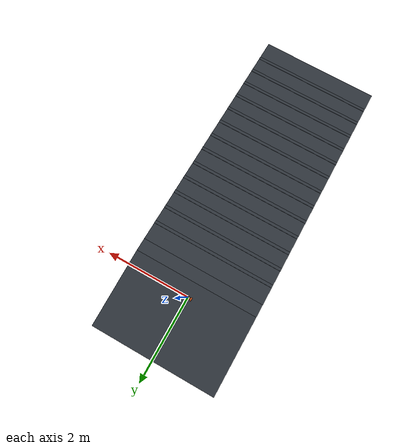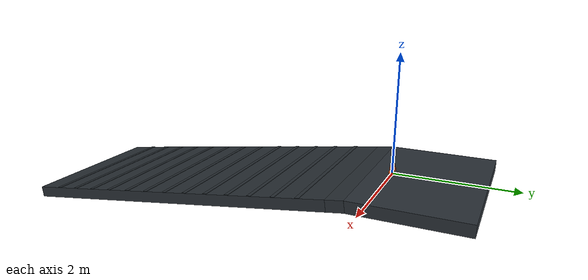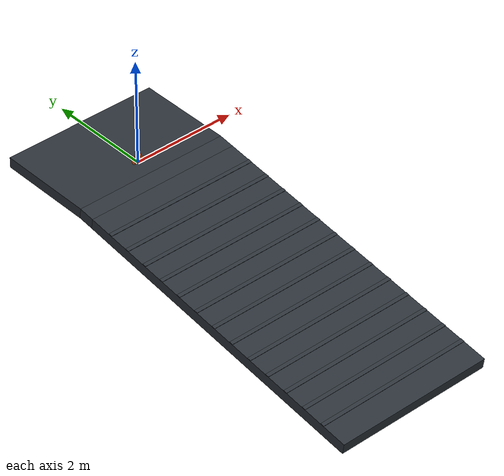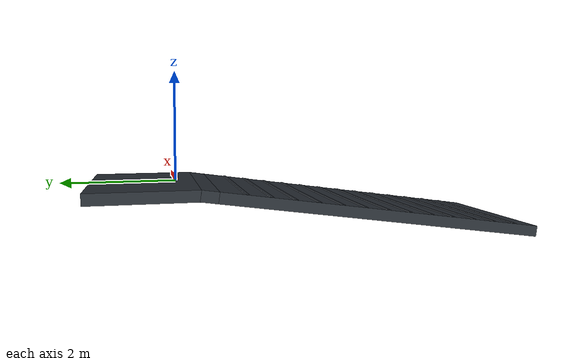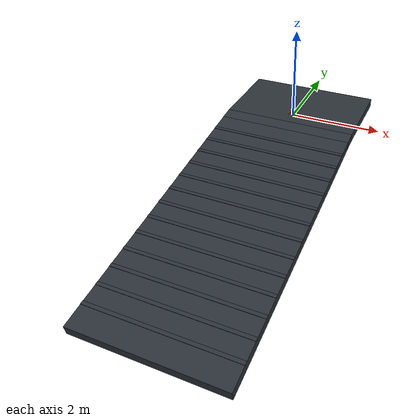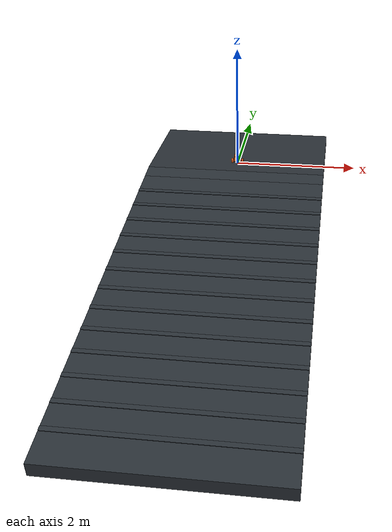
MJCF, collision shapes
<mujoco model="Stage4B rtrain_042_m08p0">
  <compiler angle="radian" meshdir="../../../../assets/upstream_local" />
  <option timestep="0.001" integrator="implicitfast" gravity="0 0 -9.81" />
  <statistic center="0 0 0.05" extent="0.28" />
  <default>
    <default class="visual">
      <geom contype="0" conaffinity="0" group="2" />
    </default>
    <default class="collision">
      <geom group="3" rgba="0.85 0.35 0.12 0.25" solref="0.005 1" solimp="0.9 0.95 0.001" />
    </default>
  </default>
  <asset>
    <texture name="ground_tex" type="2d" builtin="checker" rgb1="0.22 0.25 0.28" rgb2="0.12 0.14 0.16" width="256" height="256" />
    <material name="ground_mat" texture="ground_tex" texrepeat="4 4" reflectance="0.15" />
    <mesh name="main_frame_mesh" file="main_frame.stl" scale="0.001 0.001 0.001" />
    <mesh name="wheel_base_mesh" file="wheel_base.stl" scale="0.001 0.001 0.001" />
    <mesh name="cover_mesh" file="cover.stl" scale="0.001 0.001 0.001" />
    <mesh name="motor_left_mesh" file="motor_left.stl" scale="0.001 0.001 0.001" />
    <mesh name="motor_right_mesh" file="motor_right.stl" scale="0.001 0.001 0.001" />
    <mesh name="mc33926_mesh" file="mc33926.stl" scale="0.001 0.001 0.001" />
    <mesh name="wheel_mesh" file="wheel.stl" scale="0.001 0.001 0.001" />
    <mesh name="adapter_left_mesh" file="adapter_left.stl" scale="0.001 0.001 0.001" />
    <mesh name="adapter_right_mesh" file="adapter_right.stl" scale="0.001 0.001 0.001" />
  </asset>
  <worldbody>
    <light pos="0 -0.5 0.8" dir="0 0.6 -1" diffuse="0.8 0.8 0.8" />
    <geom name="terrain_flat" type="box" pos="0 0.575 -0.1" size="1.5 0.925 0.1" material="ground_mat" friction="0.19651055 0.005 0.0001" condim="3" />
    <geom name="terrain_transition" type="box" pos="0 -0.484622900215 -0.119902772018" euler="0.13962634016 0 0" size="1.5 0.15 0.1" material="ground_mat" friction="0.19651055 0.005 0.0001" condim="3" />
    <geom name="terrain_constant_grade" type="box" pos="0 -3.60396731675 -0.558298040042" euler="0.13962634016 0 0" size="1.5 3 0.1" material="ground_mat" friction="0.19651055 0.005 0.0001" condim="3" />
    <geom name="terrain_rough_00" type="box" pos="0 -1.09330887597 -0.10005493026" euler="0.13962634016 0 0" size="1.5 0.0360325895253 0.00436739868402" material="ground_mat" friction="0.19651055 0.005 0.0001" condim="3" />
    <geom name="terrain_rough_01" type="box" pos="0 -1.51053778956 -0.158692630037" euler="0.13962634016 0 0" size="1.5 0.0360325895253 0.00436739868402" material="ground_mat" friction="0.19651055 0.005 0.0001" condim="3" />
    <geom name="terrain_rough_02" type="box" pos="0 -1.92776670315 -0.217330329815" euler="0.13962634016 0 0" size="1.5 0.0360325895253 0.00436739868402" material="ground_mat" friction="0.19651055 0.005 0.0001" condim="3" />
    <geom name="terrain_rough_03" type="box" pos="0 -2.34499561673 -0.275968029592" euler="0.13962634016 0 0" size="1.5 0.0360325895253 0.00436739868402" material="ground_mat" friction="0.19651055 0.005 0.0001" condim="3" />
    <geom name="terrain_rough_04" type="box" pos="0 -2.76222453032 -0.334605729369" euler="0.13962634016 0 0" size="1.5 0.0360325895253 0.00436739868402" material="ground_mat" friction="0.19651055 0.005 0.0001" condim="3" />
    <geom name="terrain_rough_05" type="box" pos="0 -3.1794534439 -0.393243429147" euler="0.13962634016 0 0" size="1.5 0.0360325895253 0.00436739868402" material="ground_mat" friction="0.19651055 0.005 0.0001" condim="3" />
    <geom name="terrain_rough_06" type="box" pos="0 -3.59668235749 -0.451881128924" euler="0.13962634016 0 0" size="1.5 0.0360325895253 0.00436739868402" material="ground_mat" friction="0.19651055 0.005 0.0001" condim="3" />
    <geom name="terrain_rough_07" type="box" pos="0 -4.01391127108 -0.510518828701" euler="0.13962634016 0 0" size="1.5 0.0360325895253 0.00436739868402" material="ground_mat" friction="0.19651055 0.005 0.0001" condim="3" />
    <geom name="terrain_rough_08" type="box" pos="0 -4.43114018466 -0.569156528479" euler="0.13962634016 0 0" size="1.5 0.0360325895253 0.00436739868402" material="ground_mat" friction="0.19651055 0.005 0.0001" condim="3" />
    <geom name="terrain_rough_09" type="box" pos="0 -4.84836909825 -0.627794228256" euler="0.13962634016 0 0" size="1.5 0.0360325895253 0.00436739868402" material="ground_mat" friction="0.19651055 0.005 0.0001" condim="3" />
    <geom name="terrain_rough_10" type="box" pos="0 -5.26559801183 -0.686431928033" euler="0.13962634016 0 0" size="1.5 0.0360325895253 0.00436739868402" material="ground_mat" friction="0.19651055 0.005 0.0001" condim="3" />
    <geom name="terrain_rough_11" type="box" pos="0 -5.68282692542 -0.745069627811" euler="0.13962634016 0 0" size="1.5 0.0360325895253 0.00436739868402" material="ground_mat" friction="0.19651055 0.005 0.0001" condim="3" />
    <geom name="terrain_rough_12" type="box" pos="0 -6.10005583901 -0.803707327588" euler="0.13962634016 0 0" size="1.5 0.0360325895253 0.00436739868402" material="ground_mat" friction="0.19651055 0.005 0.0001" condim="3" />
    <body name="chassis" pos="0 0 0.043">
      <freejoint name="root" />
      <inertial pos="0.0001592717873 -0.001394466535 0.03368627387" mass="0.8173706489" fullinertia="0.0009508052638 0.001636345835 0.0009938057434 -1.163464906e-07 -4.840496598e-06 3.454944565e-05" />
      <geom name="main_frame_visual" class="visual" type="mesh" mesh="main_frame_mesh" rgba="0.12 0.42 0.72 1" />
      <geom name="wheel_base_visual" class="visual" type="mesh" mesh="wheel_base_mesh" rgba="0.95 0.50 0.10 1" />
      <geom name="cover_visual" class="visual" type="mesh" mesh="cover_mesh" rgba="0.18 0.72 0.32 0.72" />
      <geom name="motor_left_visual" class="visual" type="mesh" mesh="motor_left_mesh" rgba="0.45 0.47 0.50 1" />
      <geom name="motor_right_visual" class="visual" type="mesh" mesh="motor_right_mesh" rgba="0.45 0.47 0.50 1" />
      <geom name="mc33926_visual" class="visual" type="mesh" mesh="mc33926_mesh" rgba="0.08 0.36 0.18 1" />
      <geom name="battery_1_visual" class="visual" type="box" pos="0 -0.012 0.038" size="0.035 0.007 0.025" rgba="0.15 0.25 0.75 1" />
      <geom name="battery_2_visual" class="visual" type="box" pos="0 0.012 0.038" size="0.035 0.007 0.025" rgba="0.15 0.25 0.75 1" />
      <geom name="electronics_lump_visual" class="visual" type="box" pos="0 -0.024 0.067" size="0.035 0.006 0.0425" rgba="0.10 0.42 0.20 0.65" />
      <geom name="wheel_base_collision" class="collision" type="box" pos="0 0.0005 0.0042" size="0.074 0.0201 0.0198" />
      <geom name="lower_chassis_collision" class="collision" type="box" pos="0.001 -0.0015 0.038" size="0.0595 0.0325 0.038" />
      <geom name="upper_chassis_collision" class="collision" type="capsule" fromto="-0.024 -0.0015 0.096 0.026 -0.0015 0.096" size="0.033" />
      <site name="imu_site" type="box" pos="0 0 0.020" quat="1 0 0 0" size="0.004 0.003 0.001" rgba="1 0.15 0.05 1" />
      <body name="left_wheel" pos="-0.0885 0 0">
        <joint name="left_wheel_hinge" type="hinge" axis="1 0 0" damping="0.002" frictionloss="0.002" />
        <inertial pos="0.001407549168 -2.310217342e-08 4.024972882e-05" mass="0.1051" fullinertia="8.559060347e-05 4.760138372e-05 4.763051958e-05 2.677568832e-11 -3.525425309e-08 -1.463149106e-11" />
        <geom name="left_wheel_visual" class="visual" type="mesh" mesh="wheel_mesh" rgba="0.04 0.05 0.06 1" />
        <geom name="left_adapter_visual" class="visual" type="mesh" mesh="adapter_left_mesh" rgba="0.12 0.48 0.82 1" />
        <geom name="left_wheel_collision" class="collision" type="cylinder" size="0.042 0.012" quat="0.7071067812 0 0.7071067812 0" friction="0.19651055 0.005 0.0001" />
      </body>
      <body name="right_wheel" pos="0.0885 0 0">
        <joint name="right_wheel_hinge" type="hinge" axis="1 0 0" damping="0.002" frictionloss="0.002" />
        <inertial pos="-0.001407437868 -2.310217342e-08 -4.019113045e-05" mass="0.1051" fullinertia="8.559060397e-05 4.760141714e-05 4.763055251e-05 -2.601653908e-11 -3.526339188e-08 1.57007511e-11" />
        <geom name="right_wheel_visual" class="visual" type="mesh" mesh="wheel_mesh" rgba="0.04 0.05 0.06 1" />
        <geom name="right_adapter_visual" class="visual" type="mesh" mesh="adapter_right_mesh" rgba="0.12 0.48 0.82 1" />
        <geom name="right_wheel_collision" class="collision" type="cylinder" size="0.042 0.012" quat="0.7071067812 0 0.7071067812 0" friction="0.19651055 0.005 0.0001" />
      </body>
    </body>
  </worldbody>
  <actuator>
    <motor name="left_wheel_torque" joint="left_wheel_hinge" gear="1" ctrllimited="true" ctrlrange="-0.63 0.63" forcelimited="true" forcerange="-0.63 0.63" />
    <motor name="right_wheel_torque" joint="right_wheel_hinge" gear="1" ctrllimited="true" ctrlrange="-0.63 0.63" forcelimited="true" forcerange="-0.63 0.63" />
  </actuator>
  <sensor>
    <accelerometer name="imu_accelerometer" site="imu_site" />
    <gyro name="imu_gyro" site="imu_site" />
    <jointpos name="left_wheel_angle" joint="left_wheel_hinge" />
    <jointpos name="right_wheel_angle" joint="right_wheel_hinge" />
  </sensor>
  <keyframe>
    <key name="upright" qpos="0 0 0.043 1 0 0 0 0 0" />
  </keyframe>
</mujoco>
